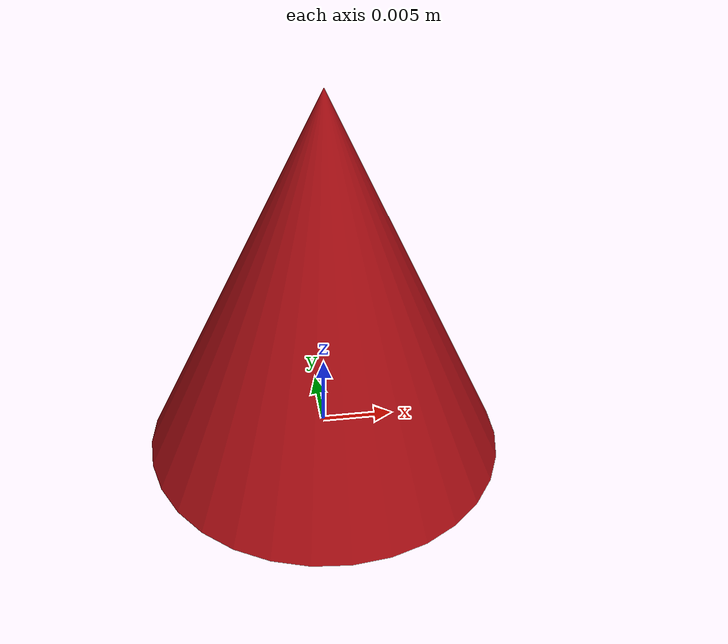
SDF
<?xml version="1.0"?>
<sdf version="1.4">
  <model name="thruster">
    <link name="link">
      <inertial>
        <mass>0.01</mass>
        <inertia>
          <ixx>1e-7</ixx>
          <ixy>0</ixy>
          <ixz>0</ixz>
          <iyy>1e-7</iyy>
          <iyz>0</iyz>
          <izz>1e-7</izz>
        </inertia>
      </inertial>
      <visual name="thruster1_visual">
        <geometry>
          <mesh>
            <scale>0.5 0.5 0.5</scale>
            <uri>model://satellite/meshes/cone.dae</uri>
          </mesh>
        </geometry>
      </visual>
    </link>
  </model>
</sdf>
